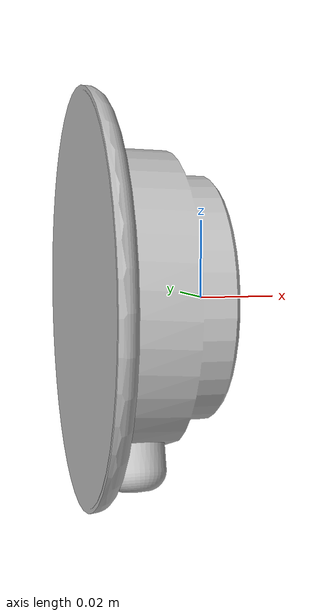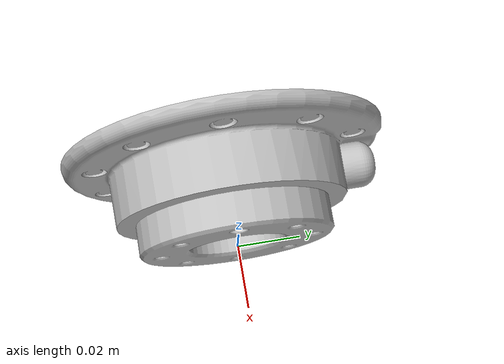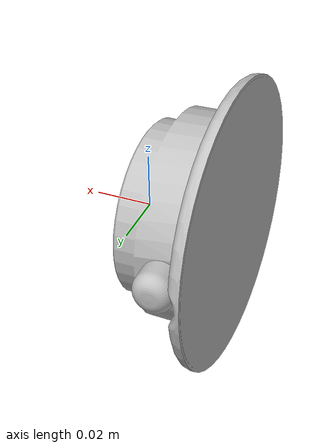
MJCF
<mujoco model="link_6">
  <default>
    <default class="visual">
      <geom group="2" type="mesh" contype="0" conaffinity="0"/>
    </default>
    <default class="collision">
      <geom group="3" type="mesh"/>
    </default>
  </default>
  <asset>
    <material name="material_link_6_0" specular="0.20000000000000004" shininess="1.0" rgba="0.74509804 0.74509804 0.74509804 1.0"/>
    <mesh file="link_6.obj"/>
  </asset>
  <worldbody>
    <body name="link_6">
      <geom material="material_link_6_0" mesh="link_6" class="visual"/>
      <geom mesh="link_6" class="collision"/>
    </body>
  </worldbody>
</mujoco>
